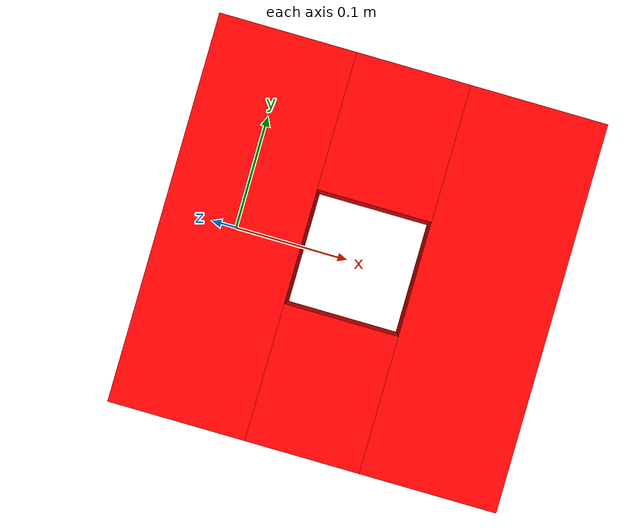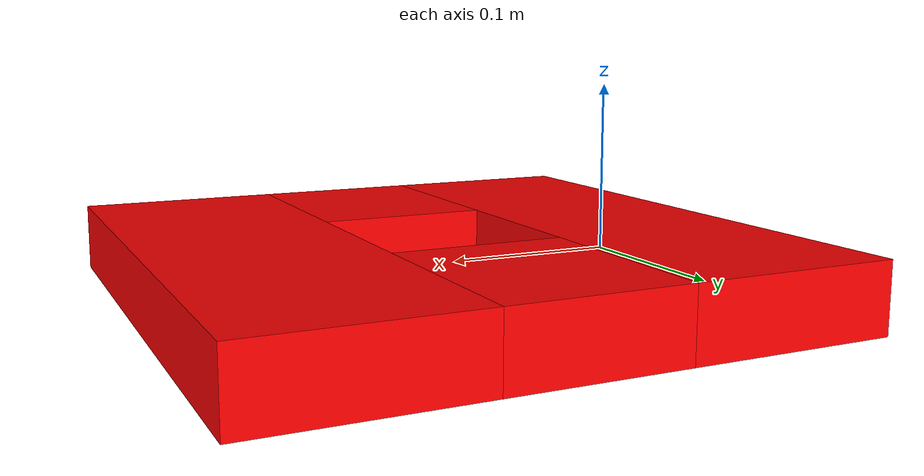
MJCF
<mujoco model="hole">
  <worldbody>
    <body name="collision">
      <geom pos="0 0 0" size="0.06 0.17 0.02" type="box" rgba="1 0 0 1" group="1"/>
      <geom pos="0.22 0 0" size="0.06 0.17 0.02" type="box" rgba="1 0 0 1" group="1"/>
      <geom pos="0.11 0.11 0" size="0.05 0.06 0.02" type="box" rgba="1 0 0 1" group="1"/>
      <geom pos="0.11 -0.11 0" size="0.05 0.06 0.02" type="box" rgba="1 0 0 1" group="1"/>
    </body>
    <body name="visual">
    </body>
    <site rgba="0 0 0 0" size="0.005" pos="0 0 -0.02" name="bottom_site"/>
    <site rgba="0 0 0 0" size="0.005" pos="0 0 0.02" name="top_site"/>
    <site rgba="0 0 0 0" size="0.005" pos="0.25 0.25 0.1" name="horizontal_radius_site"/>
  </worldbody>
</mujoco>
